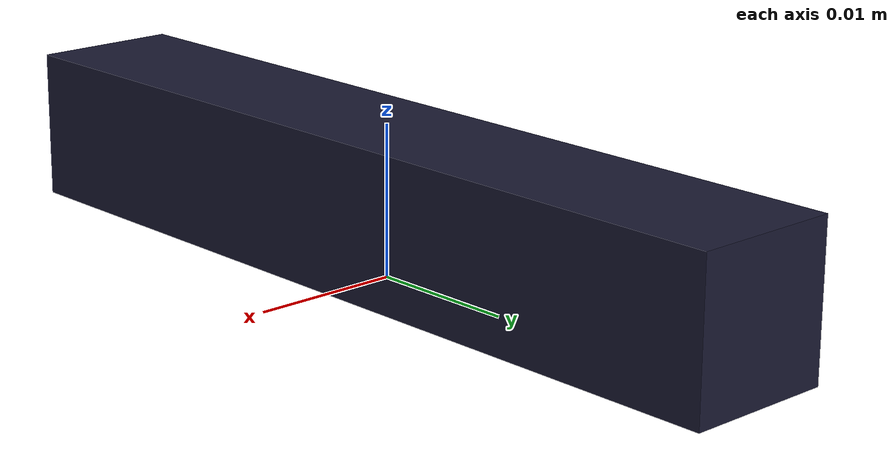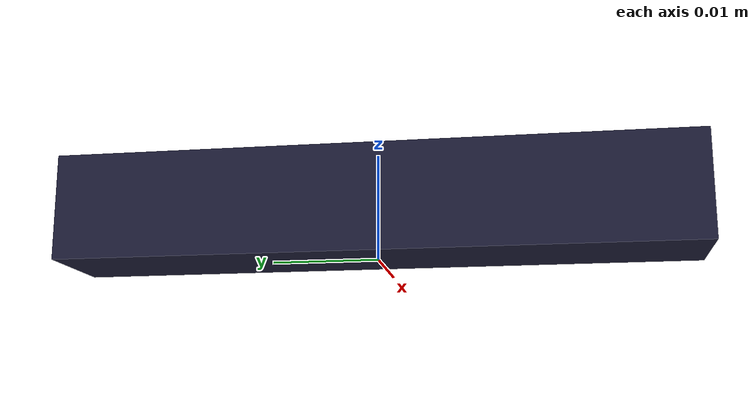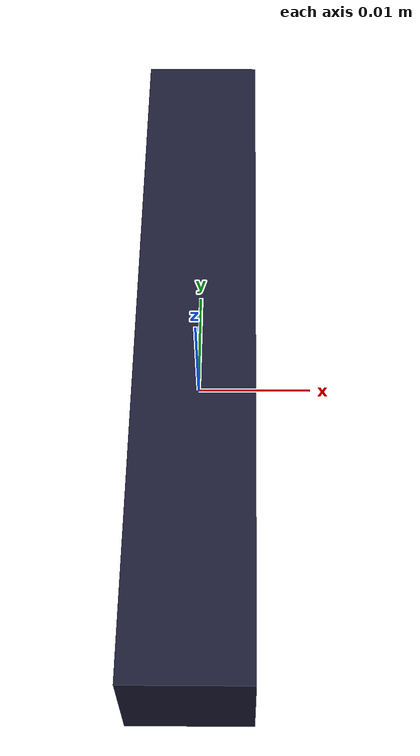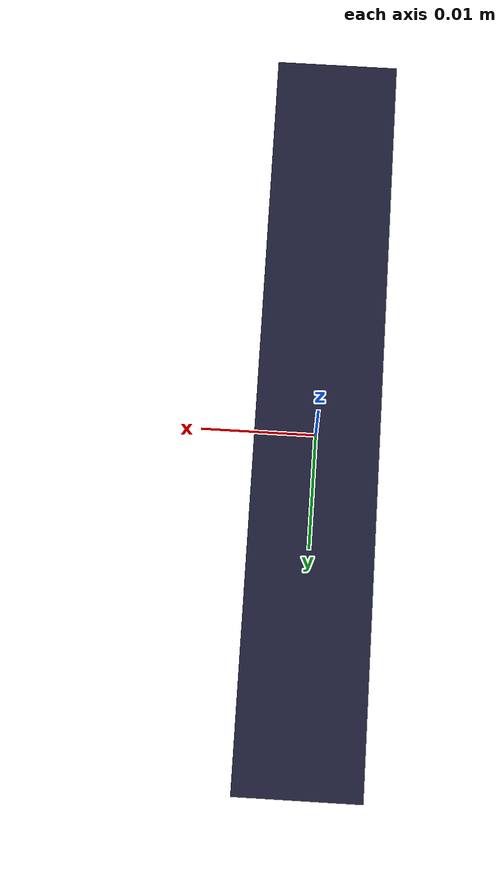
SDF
<?xml version="1.0" ?>
<sdf version="1.6">
  <model name="mathstick6">
    <static>false</static>
    <link name="link">
      <collision name="collision">
        <geometry>
          <mesh>
            <uri>model://mathstick6/meshes/MathStick6.stl</uri>
            <scale>0.001 0.001 0.001</scale>
          </mesh>
        </geometry>
        <surface>
          <friction>
            <ode>
              <mu>100.0</mu> <!-- High coefficient of friction -->
              <mu2>100.0</mu2> <!-- High coefficient of friction -->
            </ode>
          </friction>
        </surface>
      </collision>
      <visual name="visual">
        <geometry>
          <mesh>
            <uri>model://mathstick6/meshes/MathStick6.stl</uri>
            <scale>0.001 0.001 0.001</scale>
          </mesh>
        </geometry>
                <material> <!-- Wheel material -->
          <ambient>0 0.65 0.19 1</ambient>
          <diffuse>0.1 0.1 0.2 1</diffuse>
          <specular>0 0 0 0</specular>
          <emissive>0 0 0 1</emissive>
        </material> <!-- End wheel material -->
      </visual>
      <inertial>
        <mass>0.03</mass>
        <inertia>
          <ixx>0.00000925</ixx>
          <ixy>0.0</ixy>
          <ixz>0.0</ixz>
          <iyy>0.0000005</iyy>
          <iyz>0.0</iyz>
          <izz>0.00000925</izz>
        </inertia>
      </inertial>
    </link>
  </model>
</sdf>
